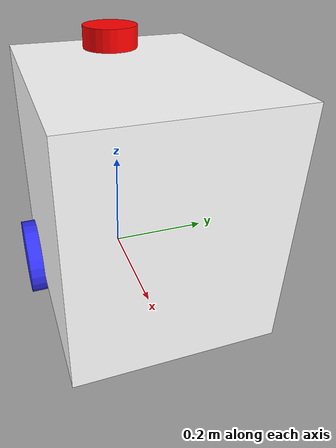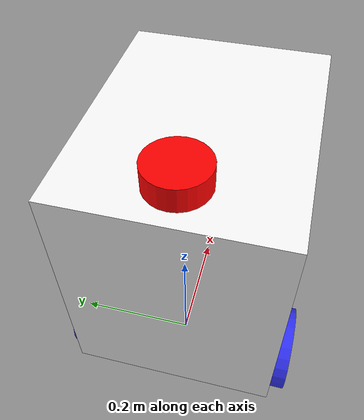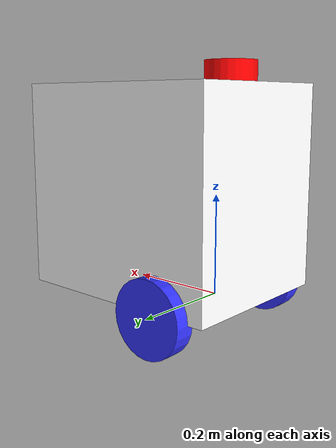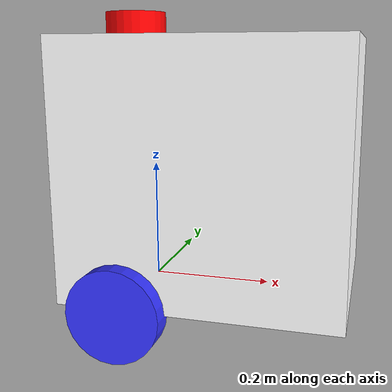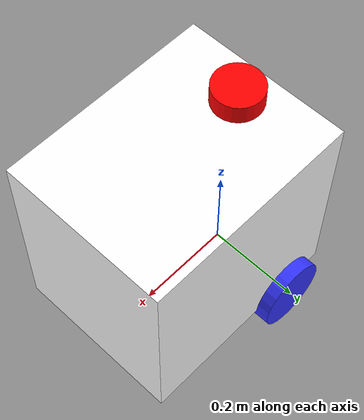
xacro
<?xml version="1.0"?>
<robot xmlns:xacro="http://www.ros.org/wiki/xacro"  name="robot">

    <xacro:include filename="robot_core.xacro" />

    <xacro:include filename="ros2_control.xacro" />
    <xacro:include filename="lidar.xacro" />

</robot>

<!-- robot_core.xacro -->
<robot xmlns:xacro="http://www.ros.org/wiki/xacro" >

    <xacro:include filename="inertial_macros.xacro"/>

    <material name="white">
        <color rgba="1 1 1 1" />
    </material>

    <material name="orange">
        <color rgba="1 0.3 0.1 1"/>
    </material>

    <material name="blue">
        <color rgba="0.2 0.2 1 1"/>
    </material>

    <material name="black">
        <color rgba="0 0 0 1"/>
    </material>

    <material name="red">
        <color rgba="1 0 0 1"/>
    </material>

    <!-- BASE LINK -->

    <link name="base_link">

    </link>

    <joint name="base_footprint_joint" type="fixed">
        <parent link="base_link"/>
        <child link="base_footprint"/>
        <origin xyz="0 0 0" rpy="0 0 0"/>
    </joint>
    <link name="base_footprint">
    </link>

    <!-- CHASSIS LINK -->

    <joint name="chassis_joint" type="fixed">
        <parent link="base_link"/>
        <child link="chassis"/>
        <origin xyz="-0.105 0 0"/>
    </joint>

    <link name="chassis">
        <visual>
            <origin xyz="0.224 0 0.2075"/>
            <geometry>
                <box size="0.448 0.350 0.415"/>
            </geometry>
            <material name="white"/>
        </visual>

        <collision>
            <origin xyz="0.224 0 0.2075"/>
            <geometry>
                <box size="0.448 0.350 0.415"/>
            </geometry>
        </collision>

        <xacro:inertial_box mass="0.5" x="0.448" y="0.35" z="0.415">
            <origin xyz="0.224 0 0.2075" rpy="0 0 0"/>
        </xacro:inertial_box>
    </link>

    <gazebo reference="chassis">
        <material>Gazebo/White</material>
    </gazebo>

    <!-- LEFT WHEEL LINK -->

    <joint name="left_wheel_joint" type="continuous">
        <parent link="base_link"/>
        <child link="left_wheel"/>
        <origin xyz="0 0.1825 0" rpy="-${pi/2} 0 0" />
        <axis xyz="0 0 1"/>
    </joint>

    <link name="left_wheel">
        <visual>
            <geometry>
                <cylinder radius="0.075" length="0.04"/>
            </geometry>
            <material name="blue"/>
        </visual>

        <collision>
            <geometry>
                <cylinder radius="0.075" length="0.04"/>
            </geometry>
        </collision>
        <xacro:inertial_cylinder mass="0.1" length="0.04" radius="0.075">
            <origin xyz="0 0 0" rpy="0 0 0"/>
        </xacro:inertial_cylinder>
    </link>

    <gazebo reference="left_wheel">
        <material>Gazebo/Blue</material>
    </gazebo>

    <!-- RIGHT WHEEL LINK -->

    <joint name="right_wheel_joint" type="continuous">
        <parent link="base_link"/>
        <child link="right_wheel"/>
        <origin xyz="0 -0.1825 0" rpy="${pi/2} 0 0" />
        <axis xyz="0 0 -1"/>
    </joint>

    <link name="right_wheel">
        <visual>
            <geometry>
                <cylinder radius="0.075" length="0.04"/>
            </geometry>
            <material name="blue"/>
        </visual>

        <collision>
            <geometry>
                <cylinder radius="0.075" length="0.04"/>
            </geometry>
        </collision>
        <xacro:inertial_cylinder mass="0.1" length="0.04" radius="0.075">
            <origin xyz="0 0 0" rpy="0 0 0"/>
        </xacro:inertial_cylinder>

    </link>

    <gazebo reference="right_wheel">
        <material>Gazebo/Blue</material>
    </gazebo>

    <!-- CASTER WHEEL LINK -->

    <joint name="caster_wheel_joint" type="fixed">
        <parent link="chassis"/>
        <child link="caster_wheel"/>
        <origin xyz="0.35 0 0"/>
    </joint>

    <link name="caster_wheel">
        <visual>
            <geometry>
                <sphere radius="0.075"/>
            </geometry>
            <material name="black"/>
        </visual>

        <collision>
            <geometry>
                <sphere radius="0.075"/>
            </geometry>
        </collision>
        <xacro:inertial_sphere mass="0.1" radius="0.075">
            <origin xyz="0 0 0" rpy="0 0 0"/>
        </xacro:inertial_sphere>
    </link>

    <gazebo reference="caster_wheel">
        <material>Gazebo/Black</material>
        <mu1 value="0.001"/>
        <mu2 value="0.001"/>
    </gazebo>

    <!-- BACK caster wheel joint-->

</robot>

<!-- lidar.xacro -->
<robot xmlns:xacro="http://www.ros.org/wiki/xacro" >

    <joint name="laser_joint" type="fixed">
        <parent link="chassis"/>
        <child link="laser_frame"/>
        <origin xyz="0.075 0 0.435" rpy="0 0 0"/>
    </joint>

    <link name="laser_frame">
        <visual>
            <geometry>
                <cylinder radius="0.05" length="0.04"/>
            </geometry>
            <material name="red"/>
        </visual>
        <collision>
            <geometry>
                <cylinder radius="0.05" length="0.04"/>
            </geometry>
        </collision>
        <xacro:inertial_cylinder mass="0.1" length="0.04" radius="0.05">
            <origin xyz="0 0 0" rpy="0 0 0"/>
        </xacro:inertial_cylinder>
    </link>

    <gazebo reference="laser_frame">
        <material>Gazebo/Red</material>

        <sensor name="laser" type="ray">
            <pose> 0 0 0 0 0 0 </pose>
            <visualize>false</visualize> <!-- ture:시각화 on, false:시각화 off -->
            <update_rate>10</update_rate>
            <ray>
                <scan>
                    <horizontal>
                        <samples>360</samples>
                        <min_angle>-3.14</min_angle>
                        <max_angle>3.14</max_angle>
                    </horizontal>
                </scan>
                <range>
                    <min>0.3</min>
                    <max>12</max>
                </range>
            </ray>
            <plugin name="laser_controller" filename="libgazebo_ros_ray_sensor.so">
                <ros>
                    <argument>~/out:=scan</argument>
                </ros>
                <output_type>sensor_msgs/LaserScan</output_type>
                <frame_name>laser_frame</frame_name>
            </plugin>
        </sensor>
    </gazebo>

</robot>
